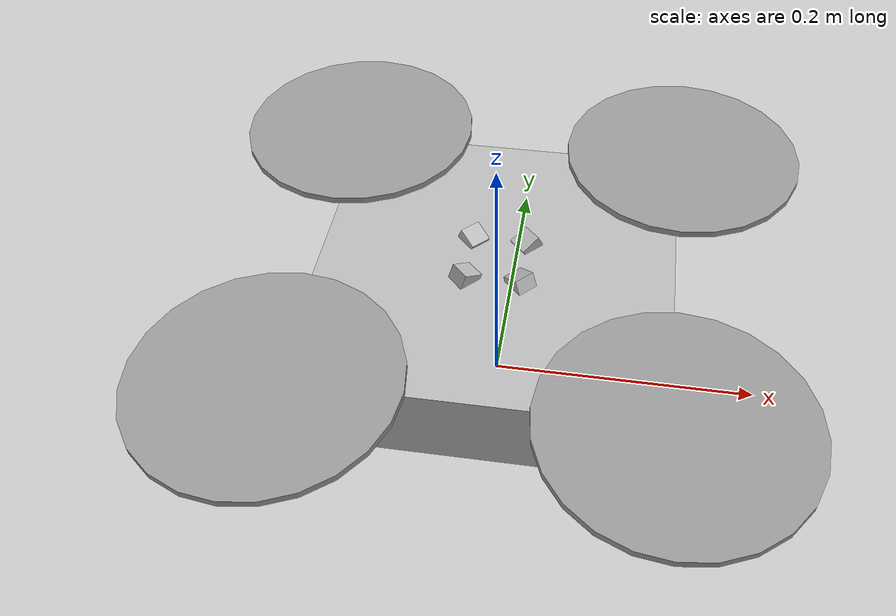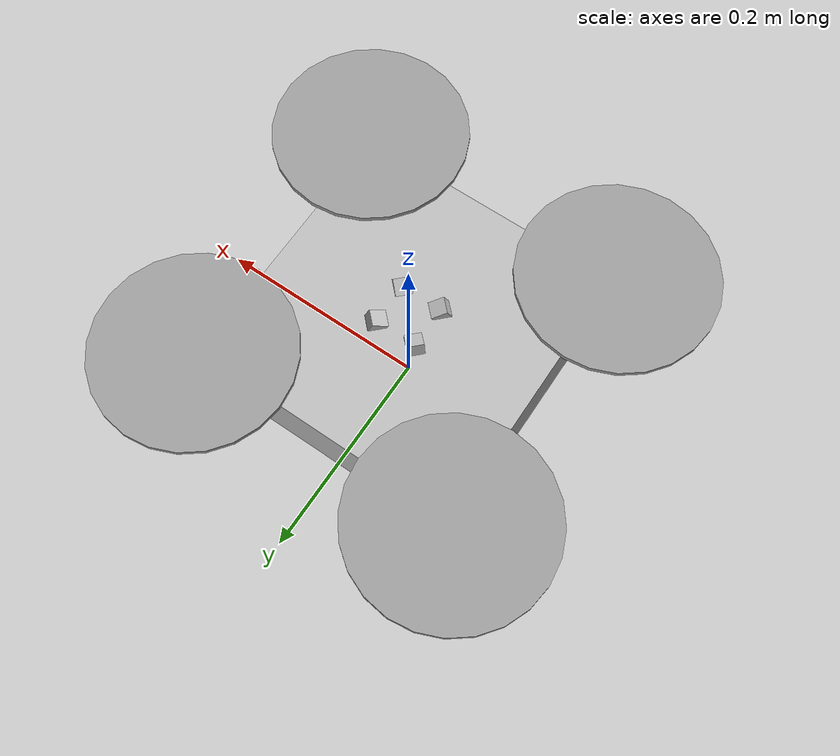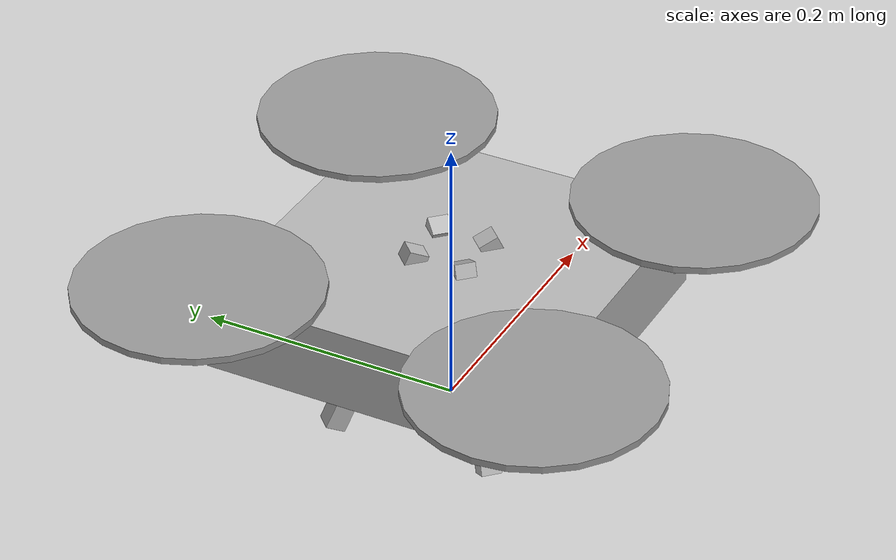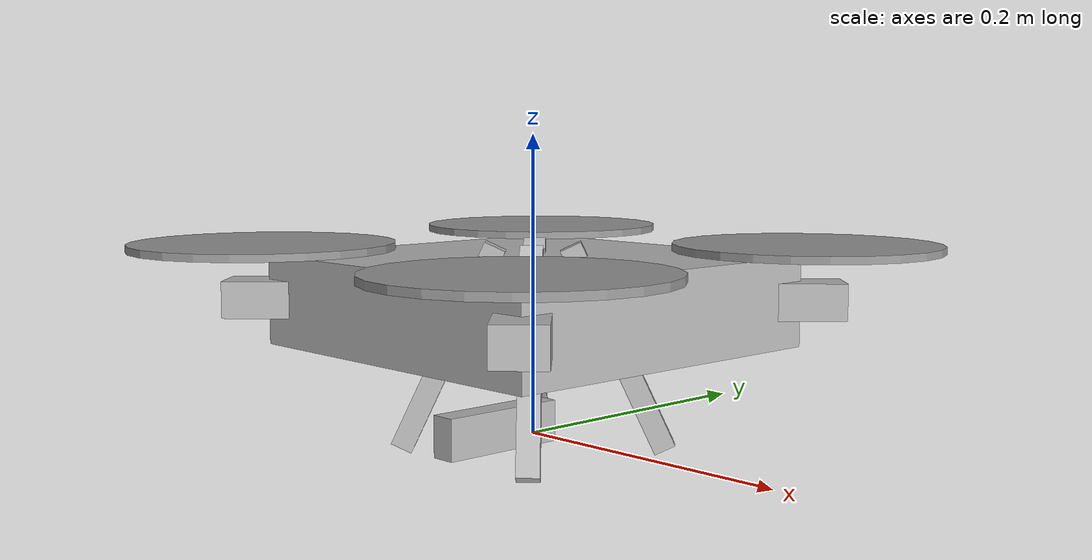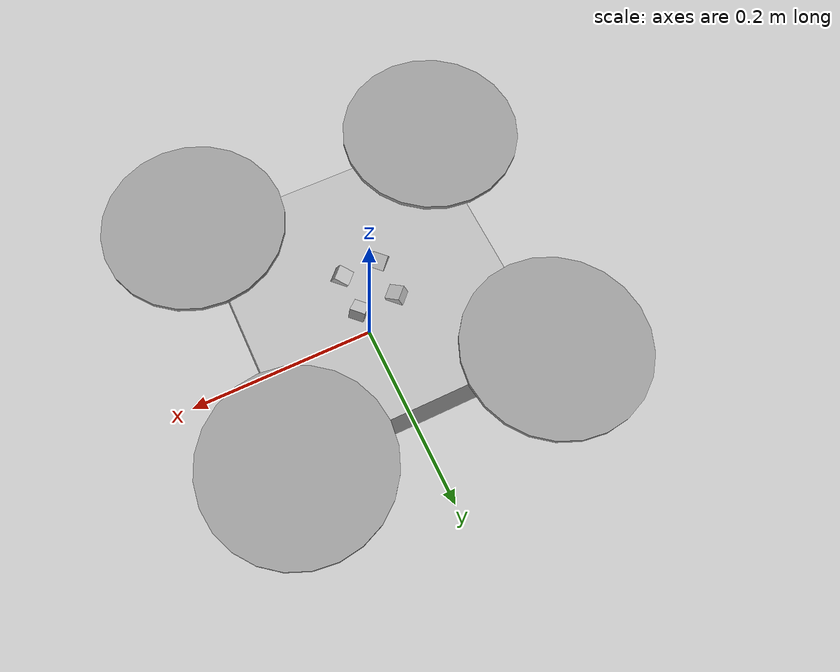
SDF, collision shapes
<?xml version="1.0" encoding="UTF-8"?>
<sdf version='1.9'>
  <model name='tilting_drone_x4'>
    <pose>0 0 0.09116852 0 0 0</pose>
    <self_collide>false</self_collide>
    <static>false</static>
    <link name="base_link">
      <inertial>
        <mass>1.775</mass>
        <inertia>
          <ixx>0.04166666666666667</ixx>
          <ixy>0</ixy>
          <ixz>0</ixz>
          <iyy>0.04166666666666667</iyy>
          <iyz>0</iyz>
          <izz>0.08000000000000001</izz>
        </inertia>
      </inertial>
      <gravity>true</gravity>
      <velocity_decay />
      <visual name="base_link_visual">
        <pose>0 0 0 0 0 0</pose>
        <geometry>
          <mesh>
            <scale>1 1 1</scale>
            <uri>model://tilting_drone_x4/meshes/base_frame.dae</uri>
          </mesh>
        </geometry>
      </visual>

      <collision name="base_link_collision_0">
        <pose>0 0 -0.0015 0 0 0</pose>
        <geometry>
          <box>
            <size>0.25 0.25 0.06</size>
          </box>
        </geometry>
        <surface>
          <contact>
            <ode>
              <min_depth>0.001</min_depth>
              <max_vel>0</max_vel>
            </ode>
          </contact>
          <friction>
            <ode />
          </friction>
        </surface>
      </collision>

      <collision name="base_link_collision_1">
        <pose> -0.04 -0.04 -0.033 0 0.436332313 0.7853981634</pose>
        <geometry>
          <box>
            <size>0.015 0.015 0.15</size>
          </box>
        </geometry>
        <surface>
          <contact>
            <ode>
              <min_depth>0.001</min_depth>
              <max_vel>0</max_vel>
            </ode>
          </contact>
          <friction>
            <ode />
          </friction>
        </surface>
      </collision>

      <collision name="base_link_collision_2">
        <pose> 0.04 0.04 -0.033 0 0.436332313 3.926990817</pose>
        <geometry>
          <box>
            <size>0.015 0.015 0.15</size>
          </box>
        </geometry>
        <surface>
          <contact>
            <ode>
              <min_depth>0.001</min_depth>
              <max_vel>0</max_vel>
            </ode>
          </contact>
          <friction>
            <ode />
          </friction>
        </surface>
      </collision>

      <collision name="base_link_collision_3">
        <pose> -0.04 0.04 -0.033 0 0.436332313 -0.7853981634</pose>
        <geometry>
          <box>
            <size>0.015 0.015 0.15</size>
          </box>
        </geometry>
        <surface>
          <contact>
            <ode>
              <min_depth>0.001</min_depth>
              <max_vel>0</max_vel>
            </ode>
          </contact>
          <friction>
            <ode />
          </friction>
        </surface>
      </collision>

      <collision name="base_link_collision_4">
        <pose> 0.04 -0.04 -0.033 0 0.436332313 2.3561944902</pose>
        <geometry>
          <box>
            <size>0.015 0.015 0.15</size>
          </box>
        </geometry>
        <surface>
          <contact>
            <ode>
              <min_depth>0.001</min_depth>
              <max_vel>0</max_vel>
            </ode>
          </contact>
          <friction>
            <ode />
          </friction>
        </surface>
      </collision>

      <sensor name="air_pressure_sensor" type="air_pressure">
        <always_on>1</always_on>
        <update_rate>50</update_rate>
        <air_pressure>
          <pressure>
            <noise type="gaussian">
              <mean>0</mean>
              <stddev>0.01</stddev>
            </noise>
          </pressure>
        </air_pressure>
      </sensor>

      <sensor name="imu_sensor" type="imu">
        <always_on>1</always_on>
        <update_rate>250</update_rate>
        <imu>
          <angular_velocity>
            <x>
              <noise type="gaussian">
                <mean>0</mean>
                <stddev>0.00018665</stddev>
                <dynamic_bias_stddev>3.8785e-05</dynamic_bias_stddev>
                <dynamic_bias_correlation_time>1000</dynamic_bias_correlation_time>
              </noise>
            </x>
            <y>
              <noise type="gaussian">
                <mean>0</mean>
                <stddev>0.00018665</stddev>
                <dynamic_bias_stddev>3.8785e-05</dynamic_bias_stddev>
                <dynamic_bias_correlation_time>1000</dynamic_bias_correlation_time>
              </noise>
            </y>
            <z>
              <noise type="gaussian">
                <mean>0</mean>
                <stddev>0.00018665</stddev>
                <dynamic_bias_stddev>3.8785e-05</dynamic_bias_stddev>
                <dynamic_bias_correlation_time>1000</dynamic_bias_correlation_time>
              </noise>
            </z>
          </angular_velocity>
          <linear_acceleration>
            <x>
              <noise type="gaussian">
                <mean>0</mean>
                <stddev>0.00186</stddev>
                <dynamic_bias_stddev>0.006</dynamic_bias_stddev>
                <dynamic_bias_correlation_time>300</dynamic_bias_correlation_time>
              </noise>
            </x>
            <y>
              <noise type="gaussian">
                <mean>0</mean>
                <stddev>0.00186</stddev>
                <dynamic_bias_stddev>0.006</dynamic_bias_stddev>
                <dynamic_bias_correlation_time>300</dynamic_bias_correlation_time>
              </noise>
            </y>
            <z>
              <noise type="gaussian">
                <mean>0</mean>
                <stddev>0.00186</stddev>
                <dynamic_bias_stddev>0.006</dynamic_bias_stddev>
                <dynamic_bias_correlation_time>300</dynamic_bias_correlation_time>
              </noise>
            </z>
          </linear_acceleration>
        </imu>
      </sensor>
      <sensor name="navsat_sensor" type="navsat">
        <always_on>1</always_on>
        <update_rate>30</update_rate>
      </sensor>
    </link>

    <include merge='true'>
      <uri>model://OakD-Lite</uri>
      <pose>0 0 -0.07 0 3.1415926535 0</pose>
    </include>
    <joint name="CameraJoint" type="fixed">
      <parent>base_link</parent>
      <child>OakD-Lite/base_link</child>
      <pose relative_to="base_link">0 0 -0.1 0 3.1415926535 0</pose>
    </joint>

    <!-- ===================== BOTTOM_RIGHT ARM ======================== -->
    <joint name='arm_br_joint' type='revolute'>
      <child>arm_br_link</child>
      <parent>base_link</parent>
      <axis>
        <xyz>0 1 0</xyz>
        <limit>
          <lower>-6.2831853072</lower>
          <upper>6.2831853072</upper>
          <effort>100</effort>
          <velocity>100.26797</velocity>
        </limit>
        <dynamics>
          <damping>0.1</damping>
          <friction>0</friction>
          <spring_reference>0</spring_reference>
          <spring_stiffness>0</spring_stiffness>
        </dynamics>
      </axis>
      <physics>
        <ode>
          <implicit_spring_damper>1</implicit_spring_damper>
          <cfm_damping>1</cfm_damping>
          <limit>
            <cfm>0</cfm>
            <erp>0.2</erp>
          </limit>
        </ode>
      </physics>
    </joint>

    <link name="arm_br_link">
      <gravity>true</gravity>
      <self_collide>false</self_collide>
      <velocity_decay />
      <pose relative_to="base_link"> -0.05055519 -0.05055519 0 0 0 -0.7853981634 </pose>
      <inertial>
        <pose> 0 -0.05 0 0.0 0.0 0 </pose>
        <mass>0.00000000000000013</mass>
        <inertia>
          <ixx>1.3230e-4</ixx>
          <iyy>1.118e-5</iyy>
          <izz>1.32308e-4</izz>
        </inertia>
      </inertial>
      <visual name="arm_br_visual">
        <geometry>
          <mesh>
            <uri>model://tilting_drone_x4/meshes/motor_arm.dae</uri>
          </mesh>
        </geometry>
      </visual>
      <collision name="arm_br_collision">
        <pose>0 -0.069 0 0 0 0</pose>
        <geometry>
          <box>
            <size>0.03293362 0.1295193 0.02460000</size>
          </box>
        </geometry>
        <surface>
          <contact>
            <ode>
              <min_depth>0.001</min_depth>
              <max_vel>0</max_vel>
            </ode>
          </contact>
          <friction>
            <ode />
          </friction>
        </surface>
      </collision>
    </link>
    <!-- ======================== BOTTOM_LEFT ARM ========================= -->
    <joint name='arm_bl_joint' type='revolute'>
      <child>arm_bl_link</child>
      <parent>base_link</parent>
      <axis>
        <xyz>0 1 0</xyz>
        <limit>
          <lower>-6.2831853072</lower>
          <upper>6.2831853072</upper>
          <effort>100</effort>
          <velocity>100.26797</velocity>
        </limit>
        <dynamics>
          <damping>0.1</damping>
          <friction>0</friction>
          <spring_reference>0</spring_reference>
          <spring_stiffness>0</spring_stiffness>
        </dynamics>
      </axis>
      <physics>
        <ode>
          <implicit_spring_damper>1</implicit_spring_damper>
          <cfm_damping>1</cfm_damping>
          <limit>
            <cfm>0</cfm>
            <erp>0.2</erp>
          </limit>
        </ode>
      </physics>
    </joint>

    <link name="arm_bl_link">
      <gravity>true</gravity>
      <self_collide>false</self_collide>
      <velocity_decay />
      <pose relative_to="base_link"> -0.05055519 0.05055519 0 0 0 -2.3561944902 </pose>
      <inertial>
        <pose> 0 -0.05 0 0.0 0.0 0 </pose>
        <mass>0.00000000000000013</mass>
        <inertia>
          <ixx>1.3230e-4</ixx>
          <iyy>1.118e-5</iyy>
          <izz>1.32308e-4</izz>
        </inertia>
      </inertial>
      <visual name="arm_bl_visual">
        <geometry>
          <mesh>
            <uri>model://tilting_drone_x4/meshes/motor_arm.dae</uri>
          </mesh>
        </geometry>
      </visual>
      <collision name="arm_bl_collision">
        <pose>0 -0.069 0 0 0 0</pose>
        <geometry>
          <box>
            <size>0.03293362 0.1295193 0.02460000</size>
          </box>
        </geometry>
        <surface>
          <contact>
            <ode>
              <min_depth>0.001</min_depth>
              <max_vel>0</max_vel>
            </ode>
          </contact>
          <friction>
            <ode />
          </friction>
        </surface>
      </collision>
    </link>
    <!-- ======================== TOP_LEFT ARM ========================= -->
    <joint name='arm_tl_joint' type='revolute'>
      <child>arm_tl_link</child>
      <parent>base_link</parent>
      <axis>
        <xyz>0 1 0</xyz>
        <limit>
          <lower>-6.2831853072</lower>
          <upper>6.2831853072</upper>
          <effort>100</effort>
          <velocity>100.26797</velocity>
        </limit>
        <dynamics>
          <damping>0.1</damping>
          <friction>0</friction>
          <spring_reference>0</spring_reference>
          <spring_stiffness>0</spring_stiffness>
        </dynamics>
      </axis>
      <physics>
        <ode>
          <implicit_spring_damper>1</implicit_spring_damper>
          <cfm_damping>1</cfm_damping>
          <limit>
            <cfm>0</cfm>
            <erp>0.2</erp>
          </limit>
        </ode>
      </physics>
    </joint>

    <link name="arm_tl_link">
      <gravity>true</gravity>
      <self_collide>false</self_collide>
      <velocity_decay />
      <pose relative_to="base_link"> 0.05055519 0.05055519 0 0 0 2.3561944902 </pose>
      <inertial>
        <pose> 0 -0.05 0 0.0 0.0 0 </pose>
        <mass>0.00000000000000013</mass>
        <inertia>
          <ixx>1.3230e-4</ixx>
          <iyy>1.118e-5</iyy>
          <izz>1.32308e-4</izz>
        </inertia>
      </inertial>
      <visual name="arm_tl_visual">
        <geometry>
          <mesh>
            <uri>model://tilting_drone_x4/meshes/motor_arm.dae</uri>
          </mesh>
        </geometry>
      </visual>
      <collision name="arm_tl_collision">
        <pose>0 -0.069 0 0 0 0</pose>
        <geometry>
          <box>
            <size>0.03293362 0.1295193 0.02460000</size>
          </box>
        </geometry>
        <surface>
          <contact>
            <ode>
              <min_depth>0.001</min_depth>
              <max_vel>0</max_vel>
            </ode>
          </contact>
          <friction>
            <ode />
          </friction>
        </surface>
      </collision>
    </link>
    <!-- ======================== TOP_RIGHT ARM ========================= -->
    <joint name='arm_tr_joint' type='revolute'>
      <child>arm_tr_link</child>
      <parent>base_link</parent>
      <axis>
        <xyz>0 1 0</xyz>
        <limit>
          <lower>-6.2831853072</lower>
          <upper>6.2831853072</upper>
          <effort>100</effort>
          <velocity>100.26797</velocity>
        </limit>
        <dynamics>
          <damping>0.1</damping>
          <friction>0</friction>
          <spring_reference>0</spring_reference>
          <spring_stiffness>0</spring_stiffness>
        </dynamics>
      </axis>
      <physics>
        <ode>
          <implicit_spring_damper>1</implicit_spring_damper>
          <cfm_damping>1</cfm_damping>
          <limit>
            <cfm>0</cfm>
            <erp>0.2</erp>
          </limit>
        </ode>
      </physics>
    </joint>

    <link name="arm_tr_link">
      <gravity>true</gravity>
      <self_collide>false</self_collide>
      <velocity_decay />
      <pose relative_to="base_link"> 0.05055519 -0.05055519 0 0 0 0.7853981634 </pose>
      <inertial>
        <pose> 0 -0.05 0 0.0 0.0 0 </pose>
        <mass>0.00000000000000013</mass>
        <inertia>
          <ixx>1.3230e-4</ixx>
          <iyy>1.118e-5</iyy>
          <izz>1.32308e-4</izz>
        </inertia>
      </inertial>
      <visual name="arm_tr_visual">
        <geometry>
          <mesh>
            <uri>model://tilting_drone_x4/meshes/motor_arm.dae</uri>
          </mesh>
        </geometry>
      </visual>
      <collision name="arm_tr_collision">
        <pose>0 -0.069 0 0 0 0</pose>
        <geometry>
          <box>
            <size>0.03293362 0.1295193 0.02460000</size>
          </box>
        </geometry>
        <surface>
          <contact>
            <ode>
              <min_depth>0.001</min_depth>
              <max_vel>0</max_vel>
            </ode>
          </contact>
          <friction>
            <ode />
          </friction>
        </surface>
      </collision>
    </link>
    <!-- ====================== BOTTOM_RIGHT PROPELLER ===================== -->
    <link name="rotor_0">
      <gravity>true</gravity>
      <self_collide>false</self_collide>
      <velocity_decay />
      <pose relative_to="arm_br_link"> 0 -0.10901593 0.0295944 0 0 0 </pose>
      <inertial>
        <pose>0 0 0 0 0 0</pose>
        <mass>0.009</mass>
        <inertia>
          <ixx>3.8464910483993325e-07</ixx>
          <iyy>2.6115851691700804e-05</iyy>
          <izz>2.649858234714004e-05</izz>
        </inertia>
      </inertial>
      <visual name="rotor_0_visual">
        <geometry>
          <mesh>
            <scale>0.00099552072 0.00099552072 0.00099552072</scale>
            <uri>model://tilting_drone_x4/meshes/prop_cw.stl</uri>
          </mesh>
        </geometry>
        <material>
          <script>
            <name>Gazebo/Gray</name>
            <uri>file://media/materials/scripts/gazebo.material</uri>
          </script>
        </material>
      </visual>
      <collision name="rotor_0_collision">
        <pose>0 0 0.005 0 0 0 </pose>
        <geometry>
          <cylinder>
            <length>0.005</length>
            <radius>0.0889</radius>
          </cylinder>
        </geometry>
        <surface>
          <contact>
            <ode>
              <min_depth>0.001</min_depth>
              <max_vel>0</max_vel>
            </ode>
          </contact>
          <friction>
            <ode />
          </friction>
        </surface>
      </collision>
    </link>

    <joint name="rotor_0_joint" type="revolute">
      <parent>arm_br_link</parent>
      <child>rotor_0</child>
      <axis>
        <xyz>0 0 1</xyz>
        <limit>
          <lower>-1e+16</lower>
          <upper>1e+16</upper>
        </limit>
        <dynamics>
          <spring_reference>0</spring_reference>
          <spring_stiffness>0</spring_stiffness>
        </dynamics>
      </axis>
    </joint>
    <!-- ====================== BOTTOM_LEFT PROPELLER ===================== -->
    <link name="rotor_1">
      <gravity>true</gravity>
      <self_collide>false</self_collide>
      <velocity_decay />
      <pose relative_to="arm_bl_link"> 0 -0.10901593 0.0295944 0 0 0 </pose>
      <inertial>
        <pose>0 0 0 0 0 0</pose>
        <mass>0.009</mass>
        <inertia>
          <ixx>3.8464910483993325e-07</ixx>
          <iyy>2.6115851691700804e-05</iyy>
          <izz>2.649858234714004e-05</izz>
        </inertia>
      </inertial>
      <visual name="rotor_1_visual">
        <geometry>
          <mesh>
            <scale>0.00099552072 0.00099552072 0.00099552072</scale>
            <uri>model://tilting_drone_x4/meshes/prop_ccw.stl</uri>
          </mesh>
        </geometry>
        <material>
          <script>
            <name>Gazebo/Gray</name>
            <uri>file://media/materials/scripts/gazebo.material</uri>
          </script>
        </material>
      </visual>
      <collision name="rotor_1_collision">
        <pose>0 0 0.005 0 0 0 </pose>
        <geometry>
          <cylinder>
            <length>0.005</length>
            <radius>0.0889</radius>
          </cylinder>
        </geometry>
        <surface>
          <contact>
            <ode>
              <min_depth>0.001</min_depth>
              <max_vel>0</max_vel>
            </ode>
          </contact>
          <friction>
            <ode />
          </friction>
        </surface>
      </collision>
    </link>

    <joint name="rotor_1_joint" type="revolute">
      <parent>arm_bl_link</parent>
      <child>rotor_1</child>
      <axis>
        <xyz>0 0 1</xyz>
        <limit>
          <lower>-1e+16</lower>
          <upper>1e+16</upper>
        </limit>
        <dynamics>
          <spring_reference>0</spring_reference>
          <spring_stiffness>0</spring_stiffness>
        </dynamics>
      </axis>
    </joint>
    <!-- ====================== TOP_LEFT PROPELLER ===================== -->
    <link name="rotor_2">
      <gravity>true</gravity>
      <self_collide>false</self_collide>
      <velocity_decay />
      <pose relative_to="arm_tl_link"> 0 -0.10901593 0.0295944 0 0 0 </pose>
      <inertial>
        <pose>0 0 0 0 0 0</pose>
        <mass>0.009</mass>
        <inertia>
          <ixx>3.8464910483993325e-07</ixx>
          <iyy>2.6115851691700804e-05</iyy>
          <izz>2.649858234714004e-05</izz>
        </inertia>
      </inertial>
      <visual name="rotor_2_visual">
        <geometry>
          <mesh>
            <scale>0.00099552072 0.00099552072 0.00099552072</scale>
            <uri>model://tilting_drone_x4/meshes/prop_cw.stl</uri>
          </mesh>
        </geometry>
        <material>
          <script>
            <name>Gazebo/Gray</name>
            <uri>file://media/materials/scripts/gazebo.material</uri>
          </script>
        </material>
      </visual>

      <collision name="rotor_2_collision">
        <pose>0 0 0.005 0 0 0 </pose>
        <geometry>
          <cylinder>
            <length>0.005</length>
            <radius>0.0889</radius>
          </cylinder>
        </geometry>
        <surface>
          <contact>
            <ode>
              <min_depth>0.001</min_depth>
              <max_vel>0</max_vel>
            </ode>
          </contact>
          <friction>
            <ode />
          </friction>
        </surface>
      </collision>
    </link>

    <joint name="rotor_2_joint" type="revolute">
      <parent>arm_tl_link</parent>
      <child>rotor_2</child>
      <axis>
        <xyz>0 0 1</xyz>
        <limit>
          <lower>-1e+16</lower>
          <upper>1e+16</upper>
        </limit>
        <dynamics>
          <spring_reference>0</spring_reference>
          <spring_stiffness>0</spring_stiffness>
        </dynamics>
      </axis>
    </joint>
    <!-- ====================== TOP_RIGHT PROPELLER ===================== -->
    <link name="rotor_3">
      <gravity>true</gravity>
      <self_collide>false</self_collide>
      <velocity_decay />
      <pose relative_to="arm_tr_link"> 0 -0.10901593 0.0295944 0 0 0 </pose>
      <inertial>
        <pose>0 0 0 0 0 0</pose>
        <mass>0.009</mass>
        <inertia>
          <ixx>3.8464910483993325e-07</ixx>
          <iyy>2.6115851691700804e-05</iyy>
          <izz>2.649858234714004e-05</izz>
        </inertia>
      </inertial>
      <visual name="rotor_3_visual">
        <geometry>
          <mesh>
            <scale>0.00099552072 0.00099552072 0.00099552072</scale>
            <uri>model://tilting_drone_x4/meshes/prop_ccw.stl</uri>
          </mesh>
        </geometry>
        <material>
          <script>
            <name>Gazebo/Gray</name>
            <uri>file://media/materials/scripts/gazebo.material</uri>
          </script>
        </material>
      </visual>
      <collision name="rotor_3_collision">
        <pose>0 0 0.005 0 0 0 </pose>
        <geometry>
          <cylinder>
            <length>0.005</length>
            <radius>0.0889</radius>
          </cylinder>
        </geometry>
        <surface>
          <contact>
            <ode>
              <min_depth>0.001</min_depth>
              <max_vel>0</max_vel>
            </ode>
          </contact>
          <friction>
            <ode />
          </friction>
        </surface>
      </collision>
    </link>

    <joint name="rotor_3_joint" type="revolute">
      <parent>arm_tr_link</parent>
      <child>rotor_3</child>
      <axis>
        <xyz>0 0 1</xyz>
        <limit>
          <lower>-1e+16</lower>
          <upper>1e+16</upper>
        </limit>
        <dynamics>
          <spring_reference>0</spring_reference>
          <spring_stiffness>0</spring_stiffness>
        </dynamics>
      </axis>
    </joint>
    <!-- ====================== SERVO_MOTOR PLUGIN ===================== -->
    <plugin
      filename="gz-sim-joint-position-controller-system"
      name="gz::sim::systems::JointPositionController">
      <joint_name>arm_br_joint</joint_name>
      <sub_topic>servo_0</sub_topic>
      <p_gain>10</p_gain>
      <i_gain>0.1</i_gain>
      <d_gain>0.01</d_gain>
      <i_max>1</i_max>
      <i_min>-1</i_min>
      <cmd_max>1000</cmd_max>
      <cmd_min>-1000</cmd_min>
    </plugin>

    <plugin
      filename="gz-sim-joint-position-controller-system"
      name="gz::sim::systems::JointPositionController">
      <joint_name>arm_bl_joint</joint_name>
      <sub_topic>servo_1</sub_topic>
      <p_gain>10</p_gain>
      <i_gain>0.1</i_gain>
      <d_gain>0.01</d_gain>
      <i_max>1</i_max>
      <i_min>-1</i_min>
      <cmd_max>1000</cmd_max>
      <cmd_min>-1000</cmd_min>
    </plugin>

    <plugin
      filename="gz-sim-joint-position-controller-system"
      name="gz::sim::systems::JointPositionController">
      <joint_name>arm_tl_joint</joint_name>
      <sub_topic>servo_2</sub_topic>
      <p_gain>10</p_gain>
      <i_gain>0.1</i_gain>
      <d_gain>0.01</d_gain>
      <i_max>1</i_max>
      <i_min>-1</i_min>
      <cmd_max>1000</cmd_max>
      <cmd_min>-1000</cmd_min>
    </plugin>

    <plugin
      filename="gz-sim-joint-position-controller-system"
      name="gz::sim::systems::JointPositionController">
      <joint_name>arm_tr_joint</joint_name>
      <sub_topic>servo_3</sub_topic>
      <p_gain>10</p_gain>
      <i_gain>0.1</i_gain>
      <d_gain>0.01</d_gain>
      <i_max>1</i_max>
      <i_min>-1</i_min>
      <cmd_max>1000</cmd_max>
      <cmd_min>-1000</cmd_min>
    </plugin>
    <!-- ==================== PROPELLER_MOTOR PLUGIN =================== -->
    <plugin filename="gz-sim-multicopter-motor-model-system"
      name="gz::sim::systems::MulticopterMotorModel">
      <jointName>rotor_0_joint</jointName>
      <linkName>rotor_0</linkName>
      <turningDirection>cw</turningDirection>
      <timeConstantUp>0.0125</timeConstantUp>
      <timeConstantDown>0.025</timeConstantDown>
      <maxRotVelocity>1000.0</maxRotVelocity>
      <motorConstant>8.54858e-06</motorConstant>
      <momentConstant>0.016</momentConstant>
      <commandSubTopic>command/motor_speed</commandSubTopic>
      <motorNumber>0</motorNumber>
      <rotorDragCoefficient>8.06428e-05</rotorDragCoefficient>
      <rollingMomentCoefficient>1e-06</rollingMomentCoefficient>
      <rotorVelocitySlowdownSim>10</rotorVelocitySlowdownSim>
      <motorType>velocity</motorType>
    </plugin>

    <plugin filename="gz-sim-multicopter-motor-model-system"
      name="gz::sim::systems::MulticopterMotorModel">
      <jointName>rotor_1_joint</jointName>
      <linkName>rotor_1</linkName>
      <turningDirection>ccw</turningDirection>
      <timeConstantUp>0.0125</timeConstantUp>
      <timeConstantDown>0.025</timeConstantDown>
      <maxRotVelocity>1000.0</maxRotVelocity>
      <motorConstant>8.54858e-06</motorConstant>
      <momentConstant>0.016</momentConstant>
      <commandSubTopic>command/motor_speed</commandSubTopic>
      <motorNumber>1</motorNumber>
      <rotorDragCoefficient>8.06428e-05</rotorDragCoefficient>
      <rollingMomentCoefficient>1e-06</rollingMomentCoefficient>
      <rotorVelocitySlowdownSim>10</rotorVelocitySlowdownSim>
      <motorType>velocity</motorType>
    </plugin>

    <plugin filename="gz-sim-multicopter-motor-model-system"
      name="gz::sim::systems::MulticopterMotorModel">
      <jointName>rotor_2_joint</jointName>
      <linkName>rotor_2</linkName>
      <turningDirection>cw</turningDirection>
      <timeConstantUp>0.0125</timeConstantUp>
      <timeConstantDown>0.025</timeConstantDown>
      <maxRotVelocity>1000.0</maxRotVelocity>
      <motorConstant>8.54858e-06</motorConstant>
      <momentConstant>0.016</momentConstant>
      <commandSubTopic>command/motor_speed</commandSubTopic>
      <motorNumber>2</motorNumber>
      <rotorDragCoefficient>8.06428e-05</rotorDragCoefficient>
      <rollingMomentCoefficient>1e-06</rollingMomentCoefficient>
      <rotorVelocitySlowdownSim>10</rotorVelocitySlowdownSim>
      <motorType>velocity</motorType>
    </plugin>

    <plugin filename="gz-sim-multicopter-motor-model-system"
      name="gz::sim::systems::MulticopterMotorModel">
      <jointName>rotor_3_joint</jointName>
      <linkName>rotor_3</linkName>
      <turningDirection>ccw</turningDirection>
      <timeConstantUp>0.0125</timeConstantUp>
      <timeConstantDown>0.025</timeConstantDown>
      <maxRotVelocity>1000.0</maxRotVelocity>
      <motorConstant>8.54858e-06</motorConstant>
      <momentConstant>0.016</momentConstant>
      <commandSubTopic>command/motor_speed</commandSubTopic>
      <motorNumber>3</motorNumber>
      <rotorDragCoefficient>8.06428e-05</rotorDragCoefficient>
      <rollingMomentCoefficient>1e-06</rollingMomentCoefficient>
      <rotorVelocitySlowdownSim>10</rotorVelocitySlowdownSim>
      <motorType>velocity</motorType>
    </plugin>

  </model>
</sdf>

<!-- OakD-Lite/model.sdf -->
<sdf version='1.9'>
  <model name='OakD-Lite'>
    <pose>0 0 0 0 0 0</pose>
    <self_collide>false</self_collide>
    <static>false</static>
    <link name="OakD-Lite/base_link">
      <inertial>
        <pose>0.00358 -0.03 .014 0 0 0</pose>
        <mass>0.00000000061</mass>
        <inertia>
          <ixx>0.0000460804</ixx>
          <ixy>0</ixy>
          <ixz>0</ixz>
          <iyy>0.0000055421</iyy>
          <iyz>0</iyz>
          <izz>0.0000436519</izz>
        </inertia>
      </inertial>
      <visual name="OakD-Lite/visual">
        <pose>0 0 0 0 0 0</pose>
        <geometry>
          <mesh>
            <scale>1 1 1</scale>
            <uri>model://OakD-Lite/meshes/camera.dae</uri>
          </mesh>
        </geometry>
      </visual>
      <collision name="OakD-Lite/collision">
        <pose>0.00358 -0.03 .014 0 0 0</pose>
        <geometry>
          <box>
            <size>0.0175 0.091 0.028</size>
          </box>
        </geometry>
      </collision>
      <sensor name="IMX214" type="camera">
        <pose>0.01233 -0.03 .01878 1.57 -1.57 0</pose>
        <camera>
          <horizontal_fov>1.5708</horizontal_fov>
          <image>
            <width>1920</width>
            <height>1080</height>
          </image>
          <clip>
            <near>0.1</near>
            <far>100</far>
          </clip>
        </camera>
        <always_on>1</always_on>
        <update_rate>30</update_rate>
        <visualize>true</visualize>
        <topic>camera</topic>
      </sensor>
      <sensor name="StereoOV7251" type="depth_camera">
        <pose>0.01233 -0.03 .01878 1.57 -1.57 0</pose>
        <camera>
          <horizontal_fov>1.274</horizontal_fov>
          <image>
            <width>640</width>
            <height>480</height>
            <format>R_FLOAT32</format>
          </image>
          <clip>
            <near>0.2</near>
            <far>19.1</far>
          </clip>
        </camera>
        <always_on>1</always_on>
        <update_rate>30</update_rate>
        <visualize>true</visualize>
        <topic>depth_camera</topic>
      </sensor>
      <sensor name="rgbd_camera" type="rgbd_camera">
        <pose>0.01233 -0.03 .01878 1.57 -1.57 0</pose>
        <camera>
          <horizontal_fov>1.047</horizontal_fov>
          <image>
            <width>1920</width>
            <height>1080</height>
          </image>
          <clip>
            <near>0.1</near>
            <far>100</far>
          </clip>
        </camera>
        <always_on>1</always_on>
        <update_rate>30</update_rate>
        <visualize>true</visualize>
        <topic>rgbd_camera</topic>
        <enable_metrics>true</enable_metrics>
      </sensor>
      <gravity>true</gravity>
      <velocity_decay/>
    </link>
  </model>
</sdf>
